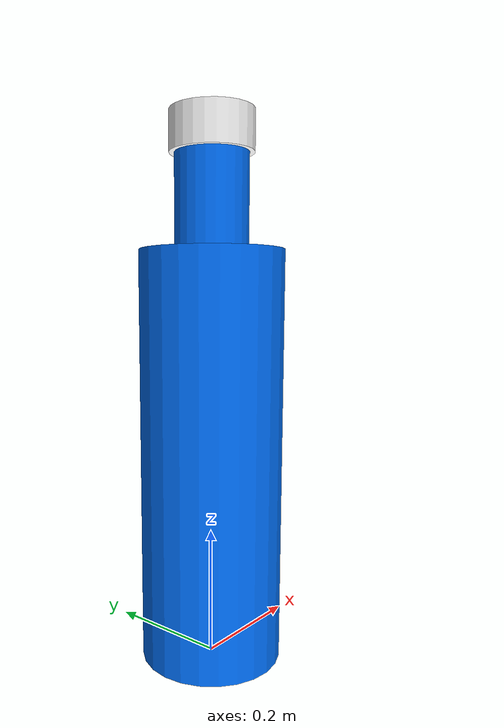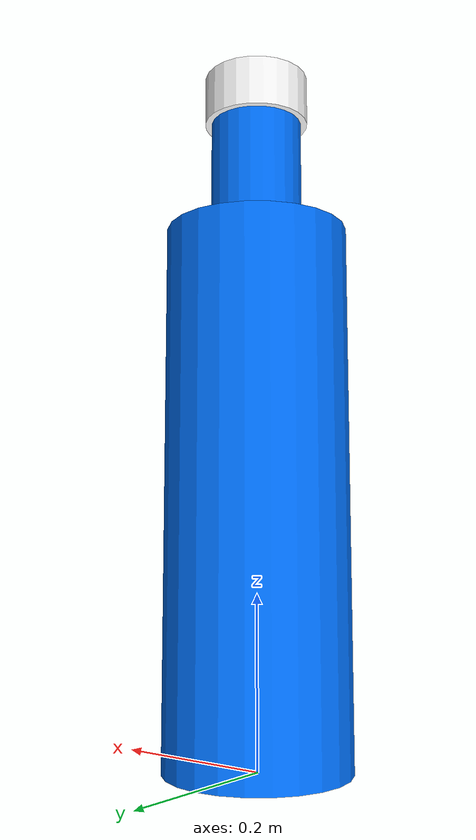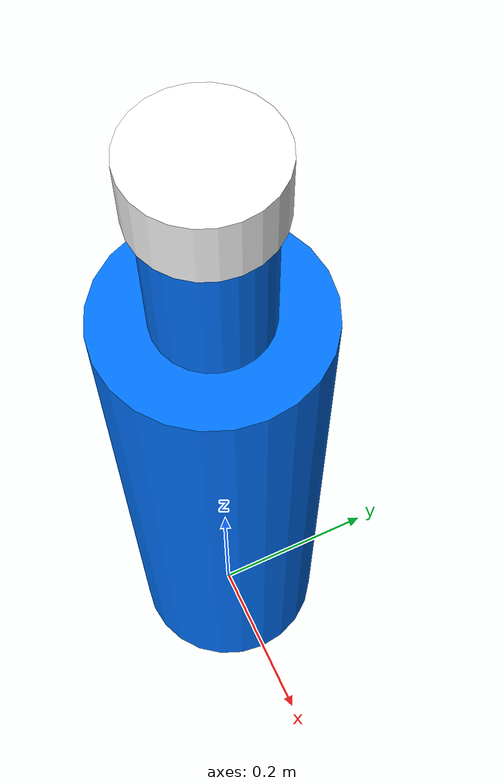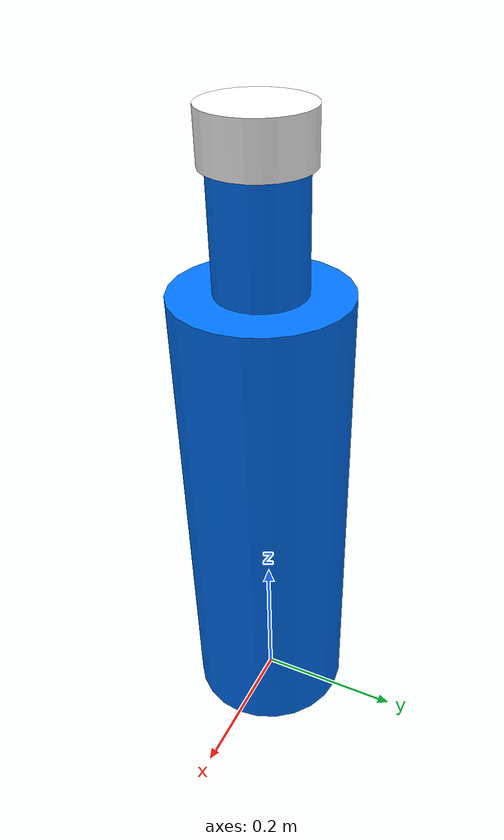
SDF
<?xml version="1.0" ?>
<sdf version="1.6">
  <model name="a1an_assistive_bottle">
    <static>true</static>
    <link name="bottle_link">
      <inertial>
        <mass>0.2</mass>
        <inertia>
          <ixx>0.001</ixx>
          <iyy>0.001</iyy>
          <izz>0.001</izz>
        </inertia>
      </inertial>

      <collision name="body_collision">
        <pose>0 0 0.32 0 0 0</pose>
        <geometry>
          <cylinder>
            <radius>0.11</radius>
            <length>0.64</length>
          </cylinder>
        </geometry>
      </collision>
      <visual name="body_visual">
        <pose>0 0 0.32 0 0 0</pose>
        <geometry>
          <cylinder>
            <radius>0.11</radius>
            <length>0.64</length>
          </cylinder>
        </geometry>
        <material>
          <ambient>0.0 0.35 0.95 1</ambient>
          <diffuse>0.0 0.45 1.0 1</diffuse>
          <specular>0.2 0.2 0.2 1</specular>
        </material>
      </visual>

      <collision name="neck_collision">
        <pose>0 0 0.70 0 0 0</pose>
        <geometry>
          <cylinder>
            <radius>0.056</radius>
            <length>0.16</length>
          </cylinder>
        </geometry>
      </collision>
      <visual name="neck_visual">
        <pose>0 0 0.70 0 0 0</pose>
        <geometry>
          <cylinder>
            <radius>0.056</radius>
            <length>0.16</length>
          </cylinder>
        </geometry>
        <material>
          <ambient>0.0 0.35 0.95 1</ambient>
          <diffuse>0.0 0.45 1.0 1</diffuse>
        </material>
      </visual>

      <visual name="cap_visual">
        <pose>0 0 0.81 0 0 0</pose>
        <geometry>
          <cylinder>
            <radius>0.064</radius>
            <length>0.06</length>
          </cylinder>
        </geometry>
        <material>
          <ambient>0.95 0.95 0.95 1</ambient>
          <diffuse>1.0 1.0 1.0 1</diffuse>
        </material>
      </visual>
    </link>
  </model>
</sdf>
